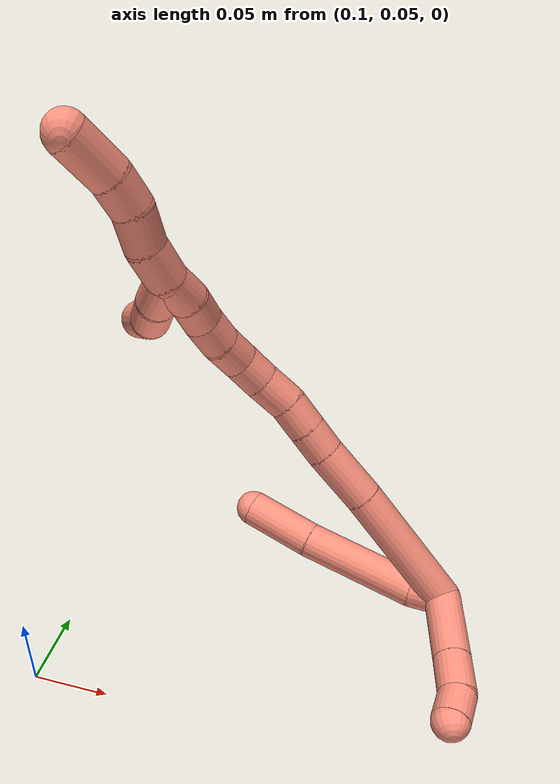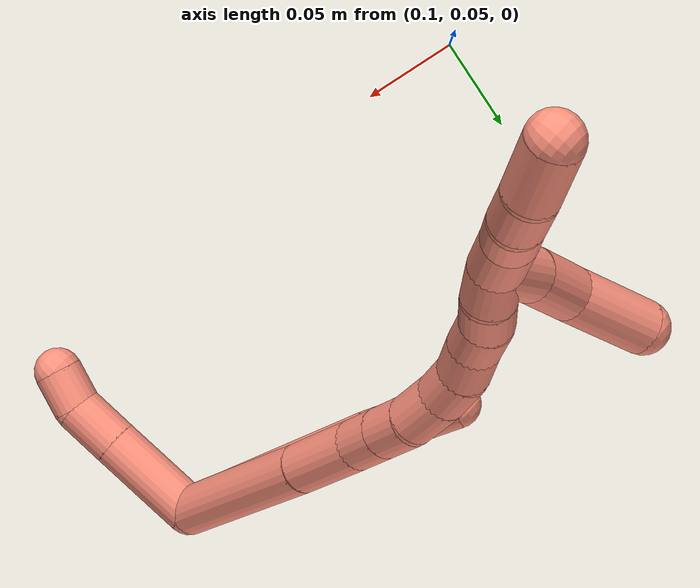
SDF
<sdf version="1.7">
 <world name="default">
  <model name="16">
   <static>0</static>
   <link name="16">
    <collision name="collision-cylinder-e_1_2_8">
     <pose>-0.001081 0.009932 0.004725 -1.12673 -0.097979 0.061918</pose>
     <geometry><cylinder><radius>0.0125</radius><length>0.022104</length></cylinder></geometry>
     <surface>
      <friction><ode><mu>1.16</mu><mu2>1.16</mu2><slip1>0</slip1><slip2>0</slip2></ode></friction>
      <contact><ode><kp>1e+06</kp><kd>1</kd><max_vel>0</max_vel><min_depth>0.001</min_depth></ode></contact>
     </surface>
    </collision>
    <visual name="visual-cylinder-e_1_2_8">
     <pose>-0.001081 0.009932 0.004725 -1.12673 -0.097979 0.061918</pose>
     <geometry><cylinder><radius>0.0125</radius><length>0.022104</length></cylinder></geometry>
     <material><ambient>1 0.576471 0.494118 1</ambient></material>
    </visual>
    <collision name="collision-cylinder-e_2_8_9">
     <pose>-0.018712 0.05228 0.026261 -1.09238 -0.425528 0.26115</pose>
     <geometry><cylinder><radius>0.0125</radius><length>0.080182</length></cylinder></geometry>
     <surface>
      <friction><ode><mu>1.16</mu><mu2>1.16</mu2><slip1>0</slip1><slip2>0</slip2></ode></friction>
      <contact><ode><kp>1e+06</kp><kd>1</kd><max_vel>0</max_vel><min_depth>0.001</min_depth></ode></contact>
     </surface>
    </collision>
    <visual name="visual-cylinder-e_2_8_9">
     <pose>-0.018712 0.05228 0.026261 -1.09238 -0.425528 0.26115</pose>
     <geometry><cylinder><radius>0.0125</radius><length>0.080182</length></cylinder></geometry>
     <material><ambient>1 0.576471 0.494118 1</ambient></material>
    </visual>
    <collision name="collision-cylinder-e_3_9_6">
     <pose>-0.045429 0.103009 0.054493 -1.01317 -0.440281 0.247064</pose>
     <geometry><cylinder><radius>0.0125</radius><length>0.047714</length></cylinder></geometry>
     <surface>
      <friction><ode><mu>1.16</mu><mu2>1.16</mu2><slip1>0</slip1><slip2>0</slip2></ode></friction>
      <contact><ode><kp>1e+06</kp><kd>1</kd><max_vel>0</max_vel><min_depth>0.001</min_depth></ode></contact>
     </surface>
    </collision>
    <visual name="visual-cylinder-e_3_9_6">
     <pose>-0.045429 0.103009 0.054493 -1.01317 -0.440281 0.247064</pose>
     <geometry><cylinder><radius>0.0125</radius><length>0.047714</length></cylinder></geometry>
     <material><ambient>1 0.576471 0.494118 1</ambient></material>
    </visual>
    <collision name="collision-cylinder-e_1_2_10">
     <pose>-0.00057 -0.0001 -0.025876 3.13774 -0.022032 -2.79551</pose>
     <geometry><cylinder><radius>0.0125</radius><length>0.051764</length></cylinder></geometry>
     <surface>
      <friction><ode><mu>1.16</mu><mu2>1.16</mu2><slip1>0</slip1><slip2>0</slip2></ode></friction>
      <contact><ode><kp>1e+06</kp><kd>1</kd><max_vel>0</max_vel><min_depth>0.001</min_depth></ode></contact>
     </surface>
    </collision>
    <visual name="visual-cylinder-e_1_2_10">
     <pose>-0.00057 -0.0001 -0.025876 3.13774 -0.022032 -2.79551</pose>
     <geometry><cylinder><radius>0.0125</radius><length>0.051764</length></cylinder></geometry>
     <material><ambient>1 0.576471 0.494118 1</ambient></material>
    </visual>
    <collision name="collision-cylinder-e_2_10_11">
     <pose>-0.001549 -0.000167 -0.065278 -3.13919 -0.030164 2.98268</pose>
     <geometry><cylinder><radius>0.0125</radius><length>0.027066</length></cylinder></geometry>
     <surface>
      <friction><ode><mu>1.16</mu><mu2>1.16</mu2><slip1>0</slip1><slip2>0</slip2></ode></friction>
      <contact><ode><kp>1e+06</kp><kd>1</kd><max_vel>0</max_vel><min_depth>0.001</min_depth></ode></contact>
     </surface>
    </collision>
    <visual name="visual-cylinder-e_2_10_11">
     <pose>-0.001549 -0.000167 -0.065278 -3.13919 -0.030164 2.98268</pose>
     <geometry><cylinder><radius>0.0125</radius><length>0.027066</length></cylinder></geometry>
     <material><ambient>1 0.576471 0.494118 1</ambient></material>
    </visual>
    <collision name="collision-cylinder-e_3_11_5">
     <pose>-0.004017 0.00297 -0.088712 -2.83793 -0.195914 1.14183</pose>
     <geometry><cylinder><radius>0.0125</radius><length>0.02117</length></cylinder></geometry>
     <surface>
      <friction><ode><mu>1.16</mu><mu2>1.16</mu2><slip1>0</slip1><slip2>0</slip2></ode></friction>
      <contact><ode><kp>1e+06</kp><kd>1</kd><max_vel>0</max_vel><min_depth>0.001</min_depth></ode></contact>
     </surface>
    </collision>
    <visual name="visual-cylinder-e_3_11_5">
     <pose>-0.004017 0.00297 -0.088712 -2.83793 -0.195914 1.14183</pose>
     <geometry><cylinder><radius>0.0125</radius><length>0.02117</length></cylinder></geometry>
     <material><ambient>1 0.576471 0.494118 1</ambient></material>
    </visual>
    <collision name="collision-cylinder-e_1_2_12">
     <pose>-0.039956 0.017844 0.01562 -0.851772 -1.03515 0.505521</pose>
     <geometry><cylinder><radius>0.0125</radius><length>0.092928</length></cylinder></geometry>
     <surface>
      <friction><ode><mu>1.16</mu><mu2>1.16</mu2><slip1>0</slip1><slip2>0</slip2></ode></friction>
      <contact><ode><kp>1e+06</kp><kd>1</kd><max_vel>0</max_vel><min_depth>0.001</min_depth></ode></contact>
     </surface>
    </collision>
    <visual name="visual-cylinder-e_1_2_12">
     <pose>-0.039956 0.017844 0.01562 -0.851772 -1.03515 0.505521</pose>
     <geometry><cylinder><radius>0.0125</radius><length>0.092928</length></cylinder></geometry>
     <material><ambient>1 0.576471 0.494118 1</ambient></material>
    </visual>
    <collision name="collision-cylinder-e_2_12_13">
     <pose>-0.097023 0.044368 0.037879 -0.917833 -1.00246 0.528764</pose>
     <geometry><cylinder><radius>0.0125</radius><length>0.040604</length></cylinder></geometry>
     <surface>
      <friction><ode><mu>1.16</mu><mu2>1.16</mu2><slip1>0</slip1><slip2>0</slip2></ode></friction>
      <contact><ode><kp>1e+06</kp><kd>1</kd><max_vel>0</max_vel><min_depth>0.001</min_depth></ode></contact>
     </surface>
    </collision>
    <visual name="visual-cylinder-e_2_12_13">
     <pose>-0.097023 0.044368 0.037879 -0.917833 -1.00246 0.528764</pose>
     <geometry><cylinder><radius>0.0125</radius><length>0.040604</length></cylinder></geometry>
     <material><ambient>1 0.576471 0.494118 1</ambient></material>
    </visual>
    <collision name="collision-cylinder-e_3_13_14">
     <pose>-0.123423 0.056742 0.047545 -0.8843 -1.09588 0.562505</pose>
     <geometry><cylinder><radius>0.0125</radius><length>0.020892</length></cylinder></geometry>
     <surface>
      <friction><ode><mu>1.16</mu><mu2>1.16</mu2><slip1>0</slip1><slip2>0</slip2></ode></friction>
      <contact><ode><kp>1e+06</kp><kd>1</kd><max_vel>0</max_vel><min_depth>0.001</min_depth></ode></contact>
     </surface>
    </collision>
    <visual name="visual-cylinder-e_3_13_14">
     <pose>-0.123423 0.056742 0.047545 -0.8843 -1.09588 0.562505</pose>
     <geometry><cylinder><radius>0.0125</radius><length>0.020892</length></cylinder></geometry>
     <material><ambient>1 0.576471 0.494118 1</ambient></material>
    </visual>
    <collision name="collision-cylinder-e_4_14_15">
     <pose>-0.142238 0.064221 0.05367 -0.884888 -1.09639 0.563216</pose>
     <geometry><cylinder><radius>0.0125</radius><length>0.021414</length></cylinder></geometry>
     <surface>
      <friction><ode><mu>1.16</mu><mu2>1.16</mu2><slip1>0</slip1><slip2>0</slip2></ode></friction>
      <contact><ode><kp>1e+06</kp><kd>1</kd><max_vel>0</max_vel><min_depth>0.001</min_depth></ode></contact>
     </surface>
    </collision>
    <visual name="visual-cylinder-e_4_14_15">
     <pose>-0.142238 0.064221 0.05367 -0.884888 -1.09639 0.563216</pose>
     <geometry><cylinder><radius>0.0125</radius><length>0.021414</length></cylinder></geometry>
     <material><ambient>1 0.576471 0.494118 1</ambient></material>
    </visual>
    <collision name="collision-cylinder-e_5_15_16">
     <pose>-0.161724 0.0739 0.058452 -1.29254 -1.01917 0.797855</pose>
     <geometry><cylinder><radius>0.0125</radius><length>0.023392</length></cylinder></geometry>
     <surface>
      <friction><ode><mu>1.16</mu><mu2>1.16</mu2><slip1>0</slip1><slip2>0</slip2></ode></friction>
      <contact><ode><kp>1e+06</kp><kd>1</kd><max_vel>0</max_vel><min_depth>0.001</min_depth></ode></contact>
     </surface>
    </collision>
    <visual name="visual-cylinder-e_5_15_16">
     <pose>-0.161724 0.0739 0.058452 -1.29254 -1.01917 0.797855</pose>
     <geometry><cylinder><radius>0.0125</radius><length>0.023392</length></cylinder></geometry>
     <material><ambient>1 0.576471 0.494118 1</ambient></material>
    </visual>
    <collision name="collision-cylinder-e_6_16_17">
     <pose>-0.180872 0.08394 0.060403 -1.50631 -1.14606 1.08806</pose>
     <geometry><cylinder><radius>0.0125</radius><length>0.020165</length></cylinder></geometry>
     <surface>
      <friction><ode><mu>1.16</mu><mu2>1.16</mu2><slip1>0</slip1><slip2>0</slip2></ode></friction>
      <contact><ode><kp>1e+06</kp><kd>1</kd><max_vel>0</max_vel><min_depth>0.001</min_depth></ode></contact>
     </surface>
    </collision>
    <visual name="visual-cylinder-e_6_16_17">
     <pose>-0.180872 0.08394 0.060403 -1.50631 -1.14606 1.08806</pose>
     <geometry><cylinder><radius>0.0125</radius><length>0.020165</length></cylinder></geometry>
     <material><ambient>1 0.576471 0.494118 1</ambient></material>
    </visual>
    <collision name="collision-cylinder-e_7_17_18">
     <pose>-0.199468 0.091178 0.058681 -2.14255 -1.19829 1.79323</pose>
     <geometry><cylinder><radius>0.0125</radius><length>0.020206</length></cylinder></geometry>
     <surface>
      <friction><ode><mu>1.16</mu><mu2>1.16</mu2><slip1>0</slip1><slip2>0</slip2></ode></friction>
      <contact><ode><kp>1e+06</kp><kd>1</kd><max_vel>0</max_vel><min_depth>0.001</min_depth></ode></contact>
     </surface>
    </collision>
    <visual name="visual-cylinder-e_7_17_18">
     <pose>-0.199468 0.091178 0.058681 -2.14255 -1.19829 1.79323</pose>
     <geometry><cylinder><radius>0.0125</radius><length>0.020206</length></cylinder></geometry>
     <material><ambient>1 0.576471 0.494118 1</ambient></material>
    </visual>
    <collision name="collision-cylinder-e_8_18_19">
     <pose>-0.218639 0.096445 0.055651 -2.0173 -1.32861 1.78663</pose>
     <geometry><cylinder><radius>0.0125</radius><length>0.020109</length></cylinder></geometry>
     <surface>
      <friction><ode><mu>1.16</mu><mu2>1.16</mu2><slip1>0</slip1><slip2>0</slip2></ode></friction>
      <contact><ode><kp>1e+06</kp><kd>1</kd><max_vel>0</max_vel><min_depth>0.001</min_depth></ode></contact>
     </surface>
    </collision>
    <visual name="visual-cylinder-e_8_18_19">
     <pose>-0.218639 0.096445 0.055651 -2.0173 -1.32861 1.78663</pose>
     <geometry><cylinder><radius>0.0125</radius><length>0.020109</length></cylinder></geometry>
     <material><ambient>1 0.576471 0.494118 1</ambient></material>
    </visual>
    <collision name="collision-cylinder-e_9_19_20">
     <pose>-0.237984 0.099153 0.051791 -2.95498 -1.27998 2.89153</pose>
     <geometry><cylinder><radius>0.0125</radius><length>0.020007</length></cylinder></geometry>
     <surface>
      <friction><ode><mu>1.16</mu><mu2>1.16</mu2><slip1>0</slip1><slip2>0</slip2></ode></friction>
      <contact><ode><kp>1e+06</kp><kd>1</kd><max_vel>0</max_vel><min_depth>0.001</min_depth></ode></contact>
     </surface>
    </collision>
    <visual name="visual-cylinder-e_9_19_20">
     <pose>-0.237984 0.099153 0.051791 -2.95498 -1.27998 2.89153</pose>
     <geometry><cylinder><radius>0.0125</radius><length>0.020007</length></cylinder></geometry>
     <material><ambient>1 0.576471 0.494118 1</ambient></material>
    </visual>
    <collision name="collision-cylinder-e_10_20_1">
     <pose>-0.256935 0.102272 0.046072 -2.41329 -1.1775 2.10425</pose>
     <geometry><cylinder><radius>0.0125</radius><length>0.020283</length></cylinder></geometry>
     <surface>
      <friction><ode><mu>1.16</mu><mu2>1.16</mu2><slip1>0</slip1><slip2>0</slip2></ode></friction>
      <contact><ode><kp>1e+06</kp><kd>1</kd><max_vel>0</max_vel><min_depth>0.001</min_depth></ode></contact>
     </surface>
    </collision>
    <visual name="visual-cylinder-e_10_20_1">
     <pose>-0.256935 0.102272 0.046072 -2.41329 -1.1775 2.10425</pose>
     <geometry><cylinder><radius>0.0125</radius><length>0.020283</length></cylinder></geometry>
     <material><ambient>1 0.576471 0.494118 1</ambient></material>
    </visual>
    <collision name="collision-cylinder-e_1_1_21">
     <pose>-0.257064 0.11268 0.04904 -0.927055 0.756981 -0.392429</pose>
     <geometry><cylinder><radius>0.0125</radius><length>0.026903</length></cylinder></geometry>
     <surface>
      <friction><ode><mu>1.16</mu><mu2>1.16</mu2><slip1>0</slip1><slip2>0</slip2></ode></friction>
      <contact><ode><kp>1e+06</kp><kd>1</kd><max_vel>0</max_vel><min_depth>0.001</min_depth></ode></contact>
     </surface>
    </collision>
    <visual name="visual-cylinder-e_1_1_21">
     <pose>-0.257064 0.11268 0.04904 -0.927055 0.756981 -0.392429</pose>
     <geometry><cylinder><radius>0.0125</radius><length>0.026903</length></cylinder></geometry>
     <material><ambient>1 0.576471 0.494118 1</ambient></material>
    </visual>
    <collision name="collision-cylinder-e_2_21_22">
     <pose>-0.237525 0.127507 0.063586 -0.679227 0.74578 -0.274678</pose>
     <geometry><cylinder><radius>0.0125</radius><length>0.030366</length></cylinder></geometry>
     <surface>
      <friction><ode><mu>1.16</mu><mu2>1.16</mu2><slip1>0</slip1><slip2>0</slip2></ode></friction>
      <contact><ode><kp>1e+06</kp><kd>1</kd><max_vel>0</max_vel><min_depth>0.001</min_depth></ode></contact>
     </surface>
    </collision>
    <visual name="visual-cylinder-e_2_21_22">
     <pose>-0.237525 0.127507 0.063586 -0.679227 0.74578 -0.274678</pose>
     <geometry><cylinder><radius>0.0125</radius><length>0.030366</length></cylinder></geometry>
     <material><ambient>1 0.576471 0.494118 1</ambient></material>
    </visual>
    <collision name="collision-cylinder-e_3_22_4">
     <pose>-0.218146 0.14394 0.089152 -0.509113 0.438749 -0.1159</pose>
     <geometry><cylinder><radius>0.0125</radius><length>0.042731</length></cylinder></geometry>
     <surface>
      <friction><ode><mu>1.16</mu><mu2>1.16</mu2><slip1>0</slip1><slip2>0</slip2></ode></friction>
      <contact><ode><kp>1e+06</kp><kd>1</kd><max_vel>0</max_vel><min_depth>0.001</min_depth></ode></contact>
     </surface>
    </collision>
    <visual name="visual-cylinder-e_3_22_4">
     <pose>-0.218146 0.14394 0.089152 -0.509113 0.438749 -0.1159</pose>
     <geometry><cylinder><radius>0.0125</radius><length>0.042731</length></cylinder></geometry>
     <material><ambient>1 0.576471 0.494118 1</ambient></material>
    </visual>
    <collision name="collision-cylinder-e_1_1_23">
     <pose>-0.278525 0.106374 0.04196 -2.24505 -1.41343 2.11566</pose>
     <geometry><cylinder><radius>0.0125</radius><length>0.024753</length></cylinder></geometry>
     <surface>
      <friction><ode><mu>1.16</mu><mu2>1.16</mu2><slip1>0</slip1><slip2>0</slip2></ode></friction>
      <contact><ode><kp>1e+06</kp><kd>1</kd><max_vel>0</max_vel><min_depth>0.001</min_depth></ode></contact>
     </surface>
    </collision>
    <visual name="visual-cylinder-e_1_1_23">
     <pose>-0.278525 0.106374 0.04196 -2.24505 -1.41343 2.11566</pose>
     <geometry><cylinder><radius>0.0125</radius><length>0.024753</length></cylinder></geometry>
     <material><ambient>1 0.576471 0.494118 1</ambient></material>
    </visual>
    <collision name="collision-cylinder-e_2_23_24">
     <pose>-0.30249 0.106691 0.03998 2.14192 -1.45013 -2.03695</pose>
     <geometry><cylinder><radius>0.0125</radius><length>0.023654</length></cylinder></geometry>
     <surface>
      <friction><ode><mu>1.16</mu><mu2>1.16</mu2><slip1>0</slip1><slip2>0</slip2></ode></friction>
      <contact><ode><kp>1e+06</kp><kd>1</kd><max_vel>0</max_vel><min_depth>0.001</min_depth></ode></contact>
     </surface>
    </collision>
    <visual name="visual-cylinder-e_2_23_24">
     <pose>-0.30249 0.106691 0.03998 2.14192 -1.45013 -2.03695</pose>
     <geometry><cylinder><radius>0.0125</radius><length>0.023654</length></cylinder></geometry>
     <material><ambient>1 0.576471 0.494118 1</ambient></material>
    </visual>
    <collision name="collision-cylinder-e_3_24_25">
     <pose>-0.324298 0.107084 0.03819 -2.14083 -1.38524 1.97625</pose>
     <geometry><cylinder><radius>0.0125</radius><length>0.020485</length></cylinder></geometry>
     <surface>
      <friction><ode><mu>1.16</mu><mu2>1.16</mu2><slip1>0</slip1><slip2>0</slip2></ode></friction>
      <contact><ode><kp>1e+06</kp><kd>1</kd><max_vel>0</max_vel><min_depth>0.001</min_depth></ode></contact>
     </surface>
    </collision>
    <visual name="visual-cylinder-e_3_24_25">
     <pose>-0.324298 0.107084 0.03819 -2.14083 -1.38524 1.97625</pose>
     <geometry><cylinder><radius>0.0125</radius><length>0.020485</length></cylinder></geometry>
     <material><ambient>1 0.576471 0.494118 1</ambient></material>
    </visual>
    <collision name="collision-cylinder-e_4_25_3">
     <pose>-0.348825 0.113689 0.034398 -2.07583 -1.19355 1.71178</pose>
     <geometry><cylinder><radius>0.0125</radius><length>0.031108</length></cylinder></geometry>
     <surface>
      <friction><ode><mu>1.16</mu><mu2>1.16</mu2><slip1>0</slip1><slip2>0</slip2></ode></friction>
      <contact><ode><kp>1e+06</kp><kd>1</kd><max_vel>0</max_vel><min_depth>0.001</min_depth></ode></contact>
     </surface>
    </collision>
    <visual name="visual-cylinder-e_4_25_3">
     <pose>-0.348825 0.113689 0.034398 -2.07583 -1.19355 1.71178</pose>
     <geometry><cylinder><radius>0.0125</radius><length>0.031108</length></cylinder></geometry>
     <material><ambient>1 0.576471 0.494118 1</ambient></material>
    </visual>
    <collision name="collision-sphere-3">
     <pose>-0.363285 0.118704 0.031626 0 -0 0</pose>
     <geometry><sphere><radius>0.0125</radius></sphere></geometry>
     <surface>
      <friction><ode><mu>1.16</mu><mu2>1.16</mu2><slip1>0</slip1><slip2>0</slip2></ode></friction>
      <contact><ode><kp>1e+06</kp><kd>1</kd><max_vel>0</max_vel><min_depth>0.001</min_depth></ode></contact>
     </surface>
    </collision>
    <visual name="visual-sphere-3">
     <pose>-0.363285 0.118704 0.031626 0 -0 0</pose>
     <geometry><sphere><radius>0.0125</radius></sphere></geometry>
     <material><ambient>1 0.576471 0.494118 1</ambient></material>
    </visual>
    <collision name="collision-sphere-25">
     <pose>-0.334364 0.108675 0.03717 0 -0 0</pose>
     <geometry><sphere><radius>0.0125</radius></sphere></geometry>
     <surface>
      <friction><ode><mu>1.16</mu><mu2>1.16</mu2><slip1>0</slip1><slip2>0</slip2></ode></friction>
      <contact><ode><kp>1e+06</kp><kd>1</kd><max_vel>0</max_vel><min_depth>0.001</min_depth></ode></contact>
     </surface>
    </collision>
    <visual name="visual-sphere-25">
     <pose>-0.334364 0.108675 0.03717 0 -0 0</pose>
     <geometry><sphere><radius>0.0125</radius></sphere></geometry>
     <material><ambient>1 0.576471 0.494118 1</ambient></material>
    </visual>
    <collision name="collision-sphere-24">
     <pose>-0.314231 0.105493 0.03921 0 -0 0</pose>
     <geometry><sphere><radius>0.0125</radius></sphere></geometry>
     <surface>
      <friction><ode><mu>1.16</mu><mu2>1.16</mu2><slip1>0</slip1><slip2>0</slip2></ode></friction>
      <contact><ode><kp>1e+06</kp><kd>1</kd><max_vel>0</max_vel><min_depth>0.001</min_depth></ode></contact>
     </surface>
    </collision>
    <visual name="visual-sphere-24">
     <pose>-0.314231 0.105493 0.03921 0 -0 0</pose>
     <geometry><sphere><radius>0.0125</radius></sphere></geometry>
     <material><ambient>1 0.576471 0.494118 1</ambient></material>
    </visual>
    <collision name="collision-sphere-23">
     <pose>-0.290749 0.107889 0.040749 0 -0 0</pose>
     <geometry><sphere><radius>0.0125</radius></sphere></geometry>
     <surface>
      <friction><ode><mu>1.16</mu><mu2>1.16</mu2><slip1>0</slip1><slip2>0</slip2></ode></friction>
      <contact><ode><kp>1e+06</kp><kd>1</kd><max_vel>0</max_vel><min_depth>0.001</min_depth></ode></contact>
     </surface>
    </collision>
    <visual name="visual-sphere-23">
     <pose>-0.290749 0.107889 0.040749 0 -0 0</pose>
     <geometry><sphere><radius>0.0125</radius></sphere></geometry>
     <material><ambient>1 0.576471 0.494118 1</ambient></material>
    </visual>
    <collision name="collision-sphere-4">
     <pose>-0.20907 0.153367 0.106041 0 -0 0</pose>
     <geometry><sphere><radius>0.0125</radius></sphere></geometry>
     <surface>
      <friction><ode><mu>1.16</mu><mu2>1.16</mu2><slip1>0</slip1><slip2>0</slip2></ode></friction>
      <contact><ode><kp>1e+06</kp><kd>1</kd><max_vel>0</max_vel><min_depth>0.001</min_depth></ode></contact>
     </surface>
    </collision>
    <visual name="visual-sphere-4">
     <pose>-0.20907 0.153367 0.106041 0 -0 0</pose>
     <geometry><sphere><radius>0.0125</radius></sphere></geometry>
     <material><ambient>1 0.576471 0.494118 1</ambient></material>
    </visual>
    <collision name="collision-sphere-22">
     <pose>-0.227222 0.134513 0.072263 0 -0 0</pose>
     <geometry><sphere><radius>0.0125</radius></sphere></geometry>
     <surface>
      <friction><ode><mu>1.16</mu><mu2>1.16</mu2><slip1>0</slip1><slip2>0</slip2></ode></friction>
      <contact><ode><kp>1e+06</kp><kd>1</kd><max_vel>0</max_vel><min_depth>0.001</min_depth></ode></contact>
     </surface>
    </collision>
    <visual name="visual-sphere-22">
     <pose>-0.227222 0.134513 0.072263 0 -0 0</pose>
     <geometry><sphere><radius>0.0125</radius></sphere></geometry>
     <material><ambient>1 0.576471 0.494118 1</ambient></material>
    </visual>
    <collision name="collision-sphere-21">
     <pose>-0.247827 0.1205 0.054908 0 -0 0</pose>
     <geometry><sphere><radius>0.0125</radius></sphere></geometry>
     <surface>
      <friction><ode><mu>1.16</mu><mu2>1.16</mu2><slip1>0</slip1><slip2>0</slip2></ode></friction>
      <contact><ode><kp>1e+06</kp><kd>1</kd><max_vel>0</max_vel><min_depth>0.001</min_depth></ode></contact>
     </surface>
    </collision>
    <visual name="visual-sphere-21">
     <pose>-0.247827 0.1205 0.054908 0 -0 0</pose>
     <geometry><sphere><radius>0.0125</radius></sphere></geometry>
     <material><ambient>1 0.576471 0.494118 1</ambient></material>
    </visual>
    <collision name="collision-sphere-1">
     <pose>-0.266302 0.104859 0.043171 0 -0 0</pose>
     <geometry><sphere><radius>0.0125</radius></sphere></geometry>
     <surface>
      <friction><ode><mu>1.16</mu><mu2>1.16</mu2><slip1>0</slip1><slip2>0</slip2></ode></friction>
      <contact><ode><kp>1e+06</kp><kd>1</kd><max_vel>0</max_vel><min_depth>0.001</min_depth></ode></contact>
     </surface>
    </collision>
    <visual name="visual-sphere-1">
     <pose>-0.266302 0.104859 0.043171 0 -0 0</pose>
     <geometry><sphere><radius>0.0125</radius></sphere></geometry>
     <material><ambient>1 0.576471 0.494118 1</ambient></material>
    </visual>
    <collision name="collision-sphere-11">
     <pose>-0.001957 -0.000134 -0.078804 0 -0 0</pose>
     <geometry><sphere><radius>0.0125</radius></sphere></geometry>
     <surface>
      <friction><ode><mu>1.16</mu><mu2>1.16</mu2><slip1>0</slip1><slip2>0</slip2></ode></friction>
      <contact><ode><kp>1e+06</kp><kd>1</kd><max_vel>0</max_vel><min_depth>0.001</min_depth></ode></contact>
     </surface>
    </collision>
    <visual name="visual-sphere-11">
     <pose>-0.001957 -0.000134 -0.078804 0 -0 0</pose>
     <geometry><sphere><radius>0.0125</radius></sphere></geometry>
     <material><ambient>1 0.576471 0.494118 1</ambient></material>
    </visual>
    <collision name="collision-sphere-10">
     <pose>-0.00114 -0.000199 -0.051751 0 -0 0</pose>
     <geometry><sphere><radius>0.0125</radius></sphere></geometry>
     <surface>
      <friction><ode><mu>1.16</mu><mu2>1.16</mu2><slip1>0</slip1><slip2>0</slip2></ode></friction>
      <contact><ode><kp>1e+06</kp><kd>1</kd><max_vel>0</max_vel><min_depth>0.001</min_depth></ode></contact>
     </surface>
    </collision>
    <visual name="visual-sphere-10">
     <pose>-0.00114 -0.000199 -0.051751 0 -0 0</pose>
     <geometry><sphere><radius>0.0125</radius></sphere></geometry>
     <material><ambient>1 0.576471 0.494118 1</ambient></material>
    </visual>
    <collision name="collision-sphere-6">
     <pose>-0.055597 0.121321 0.065913 0 -0 0</pose>
     <geometry><sphere><radius>0.0125</radius></sphere></geometry>
     <surface>
      <friction><ode><mu>1.16</mu><mu2>1.16</mu2><slip1>0</slip1><slip2>0</slip2></ode></friction>
      <contact><ode><kp>1e+06</kp><kd>1</kd><max_vel>0</max_vel><min_depth>0.001</min_depth></ode></contact>
     </surface>
    </collision>
    <visual name="visual-sphere-6">
     <pose>-0.055597 0.121321 0.065913 0 -0 0</pose>
     <geometry><sphere><radius>0.0125</radius></sphere></geometry>
     <material><ambient>1 0.576471 0.494118 1</ambient></material>
    </visual>
    <collision name="collision-sphere-9">
     <pose>-0.035262 0.084696 0.043072 0 -0 0</pose>
     <geometry><sphere><radius>0.0125</radius></sphere></geometry>
     <surface>
      <friction><ode><mu>1.16</mu><mu2>1.16</mu2><slip1>0</slip1><slip2>0</slip2></ode></friction>
      <contact><ode><kp>1e+06</kp><kd>1</kd><max_vel>0</max_vel><min_depth>0.001</min_depth></ode></contact>
     </surface>
    </collision>
    <visual name="visual-sphere-9">
     <pose>-0.035262 0.084696 0.043072 0 -0 0</pose>
     <geometry><sphere><radius>0.0125</radius></sphere></geometry>
     <material><ambient>1 0.576471 0.494118 1</ambient></material>
    </visual>
    <collision name="collision-sphere-2">
     <geometry><sphere><radius>0.0125</radius></sphere></geometry>
     <surface>
      <friction><ode><mu>1.16</mu><mu2>1.16</mu2><slip1>0</slip1><slip2>0</slip2></ode></friction>
      <contact><ode><kp>1e+06</kp><kd>1</kd><max_vel>0</max_vel><min_depth>0.001</min_depth></ode></contact>
     </surface>
    </collision>
    <visual name="visual-sphere-2">
     <geometry><sphere><radius>0.0125</radius></sphere></geometry>
     <material><ambient>1 0.576471 0.494118 1</ambient></material>
    </visual>
    <collision name="collision-sphere-19">
     <pose>-0.2284 0.09862 0.054609 0 -0 0</pose>
     <geometry><sphere><radius>0.0125</radius></sphere></geometry>
     <surface>
      <friction><ode><mu>1.16</mu><mu2>1.16</mu2><slip1>0</slip1><slip2>0</slip2></ode></friction>
      <contact><ode><kp>1e+06</kp><kd>1</kd><max_vel>0</max_vel><min_depth>0.001</min_depth></ode></contact>
     </surface>
    </collision>
    <visual name="visual-sphere-19">
     <pose>-0.2284 0.09862 0.054609 0 -0 0</pose>
     <geometry><sphere><radius>0.0125</radius></sphere></geometry>
     <material><ambient>1 0.576471 0.494118 1</ambient></material>
    </visual>
    <collision name="collision-sphere-8">
     <pose>-0.002162 0.019864 0.009451 0 -0 0</pose>
     <geometry><sphere><radius>0.0125</radius></sphere></geometry>
     <surface>
      <friction><ode><mu>1.16</mu><mu2>1.16</mu2><slip1>0</slip1><slip2>0</slip2></ode></friction>
      <contact><ode><kp>1e+06</kp><kd>1</kd><max_vel>0</max_vel><min_depth>0.001</min_depth></ode></contact>
     </surface>
    </collision>
    <visual name="visual-sphere-8">
     <pose>-0.002162 0.019864 0.009451 0 -0 0</pose>
     <geometry><sphere><radius>0.0125</radius></sphere></geometry>
     <material><ambient>1 0.576471 0.494118 1</ambient></material>
    </visual>
    <collision name="collision-sphere-5">
     <pose>-0.006078 0.006075 -0.09862 0 -0 0</pose>
     <geometry><sphere><radius>0.0125</radius></sphere></geometry>
     <surface>
      <friction><ode><mu>1.16</mu><mu2>1.16</mu2><slip1>0</slip1><slip2>0</slip2></ode></friction>
      <contact><ode><kp>1e+06</kp><kd>1</kd><max_vel>0</max_vel><min_depth>0.001</min_depth></ode></contact>
     </surface>
    </collision>
    <visual name="visual-sphere-5">
     <pose>-0.006078 0.006075 -0.09862 0 -0 0</pose>
     <geometry><sphere><radius>0.0125</radius></sphere></geometry>
     <material><ambient>1 0.576471 0.494118 1</ambient></material>
    </visual>
    <collision name="collision-sphere-12">
     <pose>-0.079912 0.035689 0.03124 0 -0 0</pose>
     <geometry><sphere><radius>0.0125</radius></sphere></geometry>
     <surface>
      <friction><ode><mu>1.16</mu><mu2>1.16</mu2><slip1>0</slip1><slip2>0</slip2></ode></friction>
      <contact><ode><kp>1e+06</kp><kd>1</kd><max_vel>0</max_vel><min_depth>0.001</min_depth></ode></contact>
     </surface>
    </collision>
    <visual name="visual-sphere-12">
     <pose>-0.079912 0.035689 0.03124 0 -0 0</pose>
     <geometry><sphere><radius>0.0125</radius></sphere></geometry>
     <material><ambient>1 0.576471 0.494118 1</ambient></material>
    </visual>
    <collision name="collision-sphere-13">
     <pose>-0.114133 0.053047 0.044517 0 -0 0</pose>
     <geometry><sphere><radius>0.0125</radius></sphere></geometry>
     <surface>
      <friction><ode><mu>1.16</mu><mu2>1.16</mu2><slip1>0</slip1><slip2>0</slip2></ode></friction>
      <contact><ode><kp>1e+06</kp><kd>1</kd><max_vel>0</max_vel><min_depth>0.001</min_depth></ode></contact>
     </surface>
    </collision>
    <visual name="visual-sphere-13">
     <pose>-0.114133 0.053047 0.044517 0 -0 0</pose>
     <geometry><sphere><radius>0.0125</radius></sphere></geometry>
     <material><ambient>1 0.576471 0.494118 1</ambient></material>
    </visual>
    <collision name="collision-sphere-14">
     <pose>-0.132713 0.060436 0.050572 0 -0 0</pose>
     <geometry><sphere><radius>0.0125</radius></sphere></geometry>
     <surface>
      <friction><ode><mu>1.16</mu><mu2>1.16</mu2><slip1>0</slip1><slip2>0</slip2></ode></friction>
      <contact><ode><kp>1e+06</kp><kd>1</kd><max_vel>0</max_vel><min_depth>0.001</min_depth></ode></contact>
     </surface>
    </collision>
    <visual name="visual-sphere-14">
     <pose>-0.132713 0.060436 0.050572 0 -0 0</pose>
     <geometry><sphere><radius>0.0125</radius></sphere></geometry>
     <material><ambient>1 0.576471 0.494118 1</ambient></material>
    </visual>
    <collision name="collision-sphere-15">
     <pose>-0.151763 0.068006 0.056768 0 -0 0</pose>
     <geometry><sphere><radius>0.0125</radius></sphere></geometry>
     <surface>
      <friction><ode><mu>1.16</mu><mu2>1.16</mu2><slip1>0</slip1><slip2>0</slip2></ode></friction>
      <contact><ode><kp>1e+06</kp><kd>1</kd><max_vel>0</max_vel><min_depth>0.001</min_depth></ode></contact>
     </surface>
    </collision>
    <visual name="visual-sphere-15">
     <pose>-0.151763 0.068006 0.056768 0 -0 0</pose>
     <geometry><sphere><radius>0.0125</radius></sphere></geometry>
     <material><ambient>1 0.576471 0.494118 1</ambient></material>
    </visual>
    <collision name="collision-sphere-16">
     <pose>-0.171685 0.079794 0.060135 0 -0 0</pose>
     <geometry><sphere><radius>0.0125</radius></sphere></geometry>
     <surface>
      <friction><ode><mu>1.16</mu><mu2>1.16</mu2><slip1>0</slip1><slip2>0</slip2></ode></friction>
      <contact><ode><kp>1e+06</kp><kd>1</kd><max_vel>0</max_vel><min_depth>0.001</min_depth></ode></contact>
     </surface>
    </collision>
    <visual name="visual-sphere-16">
     <pose>-0.171685 0.079794 0.060135 0 -0 0</pose>
     <geometry><sphere><radius>0.0125</radius></sphere></geometry>
     <material><ambient>1 0.576471 0.494118 1</ambient></material>
    </visual>
    <collision name="collision-sphere-17">
     <pose>-0.190058 0.088086 0.060671 0 -0 0</pose>
     <geometry><sphere><radius>0.0125</radius></sphere></geometry>
     <surface>
      <friction><ode><mu>1.16</mu><mu2>1.16</mu2><slip1>0</slip1><slip2>0</slip2></ode></friction>
      <contact><ode><kp>1e+06</kp><kd>1</kd><max_vel>0</max_vel><min_depth>0.001</min_depth></ode></contact>
     </surface>
    </collision>
    <visual name="visual-sphere-17">
     <pose>-0.190058 0.088086 0.060671 0 -0 0</pose>
     <geometry><sphere><radius>0.0125</radius></sphere></geometry>
     <material><ambient>1 0.576471 0.494118 1</ambient></material>
    </visual>
    <collision name="collision-sphere-18">
     <pose>-0.208878 0.094271 0.056692 0 -0 0</pose>
     <geometry><sphere><radius>0.0125</radius></sphere></geometry>
     <surface>
      <friction><ode><mu>1.16</mu><mu2>1.16</mu2><slip1>0</slip1><slip2>0</slip2></ode></friction>
      <contact><ode><kp>1e+06</kp><kd>1</kd><max_vel>0</max_vel><min_depth>0.001</min_depth></ode></contact>
     </surface>
    </collision>
    <visual name="visual-sphere-18">
     <pose>-0.208878 0.094271 0.056692 0 -0 0</pose>
     <geometry><sphere><radius>0.0125</radius></sphere></geometry>
     <material><ambient>1 0.576471 0.494118 1</ambient></material>
    </visual>
    <collision name="collision-sphere-20">
     <pose>-0.247567 0.099685 0.048972 0 -0 0</pose>
     <geometry><sphere><radius>0.0125</radius></sphere></geometry>
     <surface>
      <friction><ode><mu>1.16</mu><mu2>1.16</mu2><slip1>0</slip1><slip2>0</slip2></ode></friction>
      <contact><ode><kp>1e+06</kp><kd>1</kd><max_vel>0</max_vel><min_depth>0.001</min_depth></ode></contact>
     </surface>
    </collision>
    <visual name="visual-sphere-20">
     <pose>-0.247567 0.099685 0.048972 0 -0 0</pose>
     <geometry><sphere><radius>0.0125</radius></sphere></geometry>
     <material><ambient>1 0.576471 0.494118 1</ambient></material>
    </visual>
    <inertial>
     <pose>-0.130599 0.06747 0.030287 0 -0 0</pose>
     <mass>0.75</mass>
     <inertia><ixx>8.9e-05</ixx><ixy>0</ixy><ixz>0</ixz><iyy>0.000204</iyy><iyz>0</iyz><izz>1.9e-05</izz></inertia>
    </inertial>
   </link>
   <pose>0.346092 0.179774 0.014598 -1.34886 1.26687 0.473121</pose>
  </model>
 </world>
</sdf>
